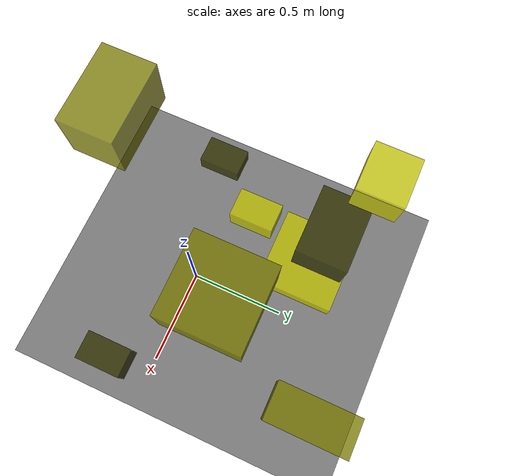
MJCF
<?xml version="1.0"?>
<mujoco model="obstacle_scene">
  <compiler angle="radian" coordinate="local"/>
  <option timestep="0.001" gravity="0 0 -9.81"/>

  <asset>
    <material name="obstacle_mat" rgba="0.8 0.8 0.0 0.8"/>
    <material name="ground_mat" rgba="0.5 0.5 0.5 1"/>
  </asset>

  <worldbody>
    <!-- Ground plane -->
    <geom name="ground" type="plane" size="3 3 0.1" material="ground_mat"/>

    <!-- Obstacles -->
    <body name="obstacle_0" pos="-0.519948 -0.050783 0.464341">
      <geom name="obs_0" type="box" size="0.065150 0.099541 0.041005" rgba="0.2 0.2 0.0 0.8"/>
    </body>
    <body name="obstacle_1" pos="0.456025 0.785164 0.682197">
      <geom name="obs_1" type="box" size="0.083351 0.176758 0.099083" rgba="0.5 0.5 0.0 0.8"/>
    </body>
    <body name="obstacle_2" pos="-0.443987 0.165684 0.092630">
      <geom name="obs_2" type="box" size="0.080949 0.123649 0.067829" rgba="0.8 0.8 0.0 0.8"/>
    </body>
    <body name="obstacle_3" pos="0.582283 -0.186821 0.244526">
      <geom name="obs_3" type="box" size="0.071334 0.115519 0.075701" rgba="0.2 0.2 0.0 0.8"/>
    </body>
    <body name="obstacle_4" pos="-0.350186 -0.471846 0.916336">
      <geom name="obs_4" type="box" size="0.194577 0.126038 0.127184" rgba="0.5 0.5 0.0 0.8"/>
    </body>
    <body name="obstacle_5" pos="-0.246909 0.531794 0.292875">
      <geom name="obs_5" type="box" size="0.195021 0.191406 0.045432" rgba="0.8 0.8 0.0 0.8"/>
    </body>
    <body name="obstacle_6" pos="-0.382801 0.585636 0.420725">
      <geom name="obs_6" type="box" size="0.178256 0.129769 0.120839" rgba="0.2 0.2 0.0 0.8"/>
    </body>
    <body name="obstacle_7" pos="0.193311 0.265956 0.907558">
      <geom name="obs_7" type="box" size="0.181211 0.178756 0.112120" rgba="0.5 0.5 0.0 0.8"/>
    </body>
    <body name="obstacle_8" pos="-0.611674 0.703522 0.708545">
      <geom name="obs_8" type="box" size="0.122945 0.111809 0.089447" rgba="0.8 0.8 0.0 0.8"/>
    </body>
  </worldbody>
</mujoco>
